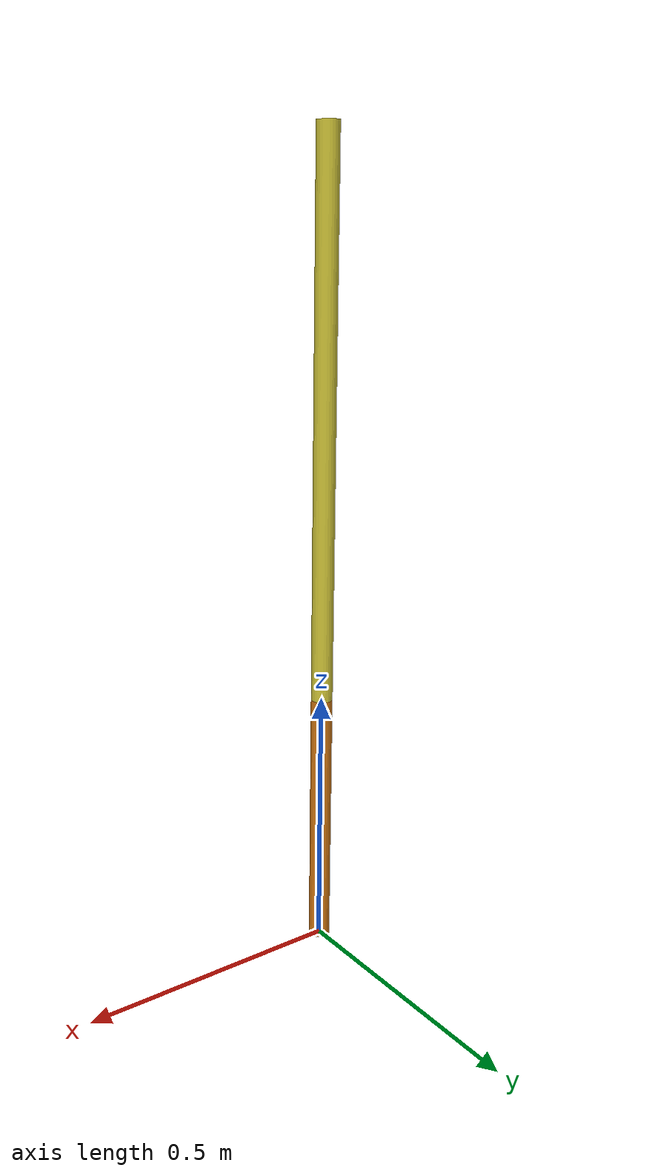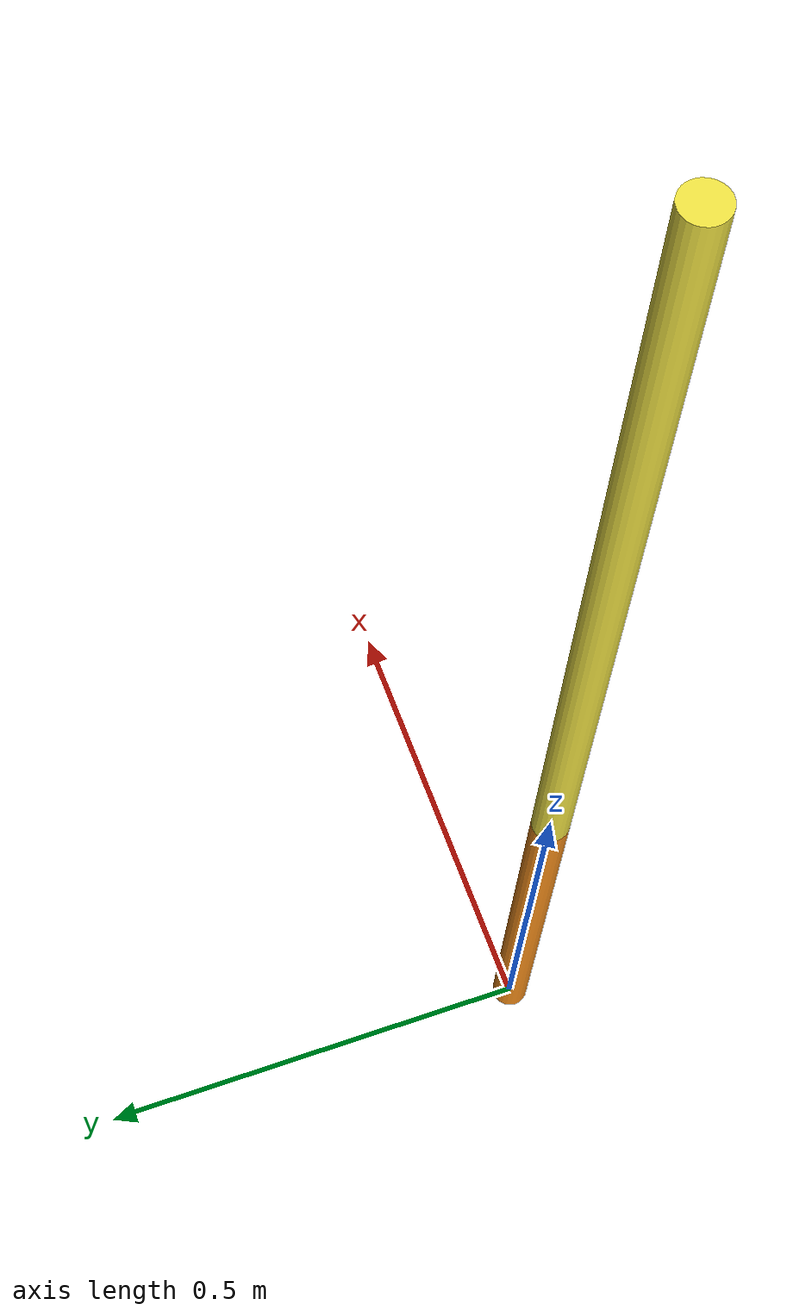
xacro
<?xml version="1.0"?>
<robot name="test_robot" xmlns:xacro="http://www.ros.org/wiki/xacro">

 <xacro:include filename="$(find testrobot_description)/urdf/test.gazebo" />
<xacro:include filename="$(find testrobot_description)/urdf/materials.xacro" />

  <link name="base_link">

    <inertial>
      <origin xyz="0 0 0" rpy="0 0 0"/>
      <mass value="1.0" />
      <inertia ixx="0.0741666666667" ixy="0.0" ixz="0.0" iyy="0.0585416666667" iyz="0.0" izz="0.0260416666667"/>
</inertial>
  </link>
<link name="world"/>

  <joint name="fixed" type="fixed">
    <parent link="world"/>
    <child link="base_link"/>
  </joint>

  <link name="first_link">

    <collision>
      <origin xyz="0 0 0.25" rpy="0 0 0" />
      <geometry>
        <cylinder length="0.5" radius="0.02"/>
      </geometry>

    </collision>

    <visual>
      <origin xyz="0 0 0.25" rpy="0 0 0" />
      <geometry>
        <cylinder length="0.5" radius="0.02"/>
      </geometry>
      <material name="orange"/>
    </visual>

    <inertial>
        <origin xyz="0 0 0.25" rpy="0 0 0" />
        <mass value="1.0" />
        <inertia
          ixx="1.0" ixy="0.0" ixz="0.0"
          iyy="1.0" iyz="0.0"
          izz="1.0" />
    </inertial>
  </link>

  <joint name="first_joint" type="continuous">
    <parent link="base_link"/>
    <child link="first_link"/>
    <origin xyz="0 0 0" rpy="0 0 0"/>
    <axis xyz="1 0 0"/>
  </joint>

  <transmission name="tran1">
    <type>transmission_interface/SimpleTransmission</type>
    <joint name="first_joint">
      <hardwareInterface>hardware_interface/VelocityJointInterface</hardwareInterface>
    </joint>
    <actuator name="motor1">
      <hardwareInterface>hardware_interface/VelocityJointInterface</hardwareInterface>
      <mechanicalReduction>1</mechanicalReduction>
    </actuator>
  </transmission>

  <link name="second_link">
    <visual>
      <geometry>
        <cylinder length="1" radius="0.02"/>
      </geometry>
      <origin rpy="0 0 0" xyz="0 0 0.5"/>
    </visual>
    <collision>
      <geometry>
        <cylinder length="1" radius="0.02"/>
      </geometry>
      <origin rpy="0 0 0" xyz="0 0 0.5"/>
    </collision>

    <inertial>
        <origin xyz="0 0 0.5" rpy="0 0 0" />
        <mass value="1" />
        <inertia
          ixx="1.0" ixy="0.0" ixz="0.0"
          iyy="1.0" iyz="0.0"
          izz="1.0" />
    </inertial>
  </link>

  <joint name="second_joint" type="continuous">
    <axis xyz="1 0 0"/>
    <origin rpy="0 0 0" xyz="0.0 0.00 0.5"/>
    <parent link="first_link"/>
    <child link="second_link"/>
  </joint>

  <transmission name="trans2">
    <type>transmission_interface/SimpleTransmission</type>
    <joint name="second_joint">
      <hardwareInterface>hardware_interface/VelocityJointInterface</hardwareInterface>
    </joint>
    <actuator name="motor2">
      <hardwareInterface>hardware_interface/VelocityJointInterface</hardwareInterface>
      <mechanicalReduction>1</mechanicalReduction>
    </actuator>
  </transmission>

</robot>
